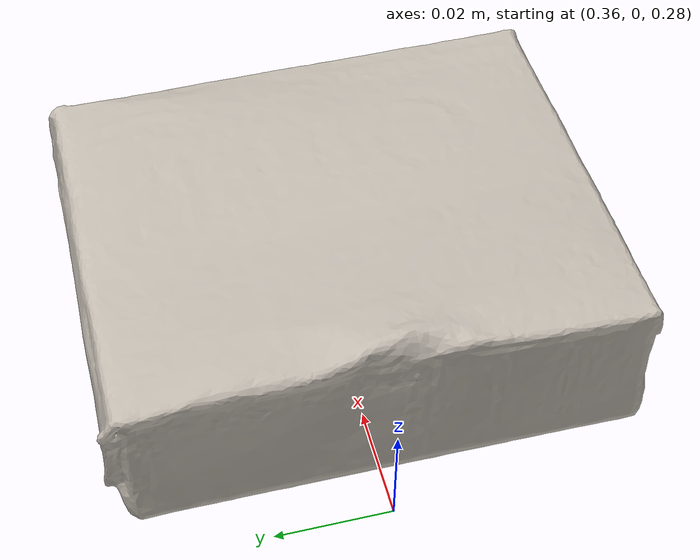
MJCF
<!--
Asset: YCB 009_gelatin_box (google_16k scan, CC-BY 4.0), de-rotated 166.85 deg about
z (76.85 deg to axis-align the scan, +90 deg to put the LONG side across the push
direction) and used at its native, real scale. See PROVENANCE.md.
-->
<?xml version="1.0"?>
<mujoco model="cuboid">
  <compiler meshdir="assets" texturedir="assets"/>

  <asset>
    <texture name="cuboid_tex" type="2d" file="cuboid_tex.png"/>
    <material name="cuboid_mat" texture="cuboid_tex" specular="0.15" shininess="0.15"/>
    <mesh name="cuboid_vis" file="cuboid_vis.obj"/>
  </asset>

  <worldbody>
    <body name="cuboid" pos="0.4 0 0.3">
      <freejoint name="cuboid_joint"/>
      <inertial pos="-0.00034 -0.00026 -0.00049" quat="0.708898 -0.003318 -0.000690 -0.705303" mass="0.09700" diaginertia="4.817e-05 6.738e-05 1.028e-04"/>
      <geom name="cuboid_visual" type="mesh" mesh="cuboid_vis" material="cuboid_mat" contype="0" conaffinity="0" group="2" mass="0"/>
      <geom name="cuboid_geom" type="box" pos="0 0 0" size="0.0365 0.0446 0.0150" group="3" rgba="0.5 0.5 0.5 0.3" condim="3" friction="1 0.03 0.003" contype="1" conaffinity="1" solref="0.01 1" mass="0"/>
      <!-- Object site for observations (manipulation point) -->
      <site name="object_site" pos="0 0 0" size="0.01" rgba="1 0 0 1"/>
    </body>
  </worldbody>
</mujoco>
